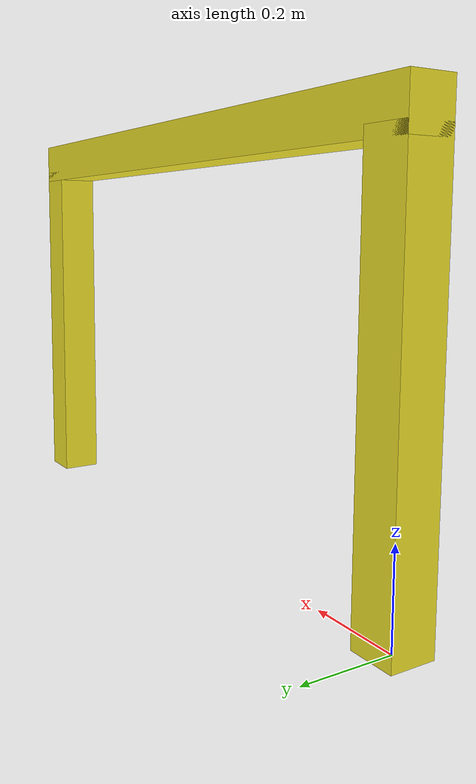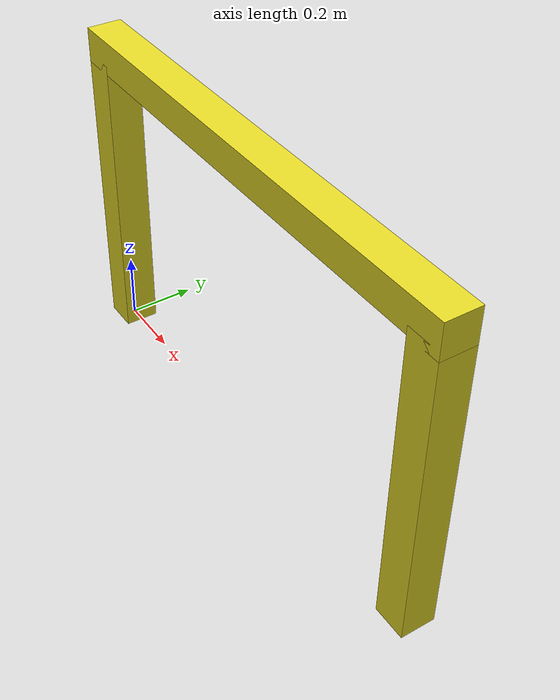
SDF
<?xml version="1.0" ?>
<sdf version="1.4">
  <model name="obstaculo_amarelo">
    <static>true</static>

    <link name="obstacle_left">
    	<pose>0 0 .45  0 0 0 </pose>
      <collision name="collision">
        <geometry>
          <box>
            <size>0.1  0.1  0.9</size>
          </box>
        </geometry>
       </collision>
      <visual name="visual">
        <geometry>
          <box>
            <size>0.1  0.1  0.9</size>
          </box>
        </geometry>
        <material>
          <script>
            <uri>file://media/materials/scripts/gazebo.material
            </uri>
            <name>Gazebo/Yellow</name>
          </script>
        </material>
      </visual>
    </link>

    <link name="obstacle_right">
      <pose>1.4 0 0.45  0 0 0 </pose>
      <collision name="collision">
        <geometry>
          <box>
            <size>0.1  0.1  0.9</size>
          </box>
        </geometry>
       </collision>
      <visual name="visual">
        <geometry>
          <box>
            <size>0.1  0.1  0.9</size>
          </box>
        </geometry>
        <material>
          <script>
            <uri>file://media/materials/scripts/gazebo.material
            </uri>
            <name>Gazebo/Yellow</name>
          </script>
        </material>
      </visual>
    </link>

    <link name="obstacle_center">
      <pose>0.7  0 0.925  0 0 0 </pose>
      <collision name="collision">
        <geometry>
          <box>
            <size>1.40  0.1  0.1</size>
          </box>
        </geometry>
       </collision>
      <visual name="visual">
        <geometry>
          <box>
            <size>1.50  0.1  0.1</size>
          </box>
        </geometry>
        <material>
          <script>
            <uri>file://media/materials/scripts/gazebo.material
            </uri>
            <name>Gazebo/Yellow</name>
          </script>
        </material>
      </visual>
    </link>

    <joint name="left_center" type="revolute">
          <child>obstacle_left</child>
          <parent>obstacle_center</parent>
          <axis>
              <xyz> 0 0 -2</xyz>
              <limit>
                <upper>0</upper>
                <lower>0</lower>
             </limit>
          </axis>
    </joint>

    <joint name="right_center" type="revolute">
      <child>obstacle_right</child>
      <parent>obstacle_center</parent>
      <axis>
        <xyz> 0 0 -2</xyz>
        <limit>
          <upper>0</upper>
          <lower>0</lower>
        </limit>
      </axis>
    </joint>

  </model>
</sdf>
